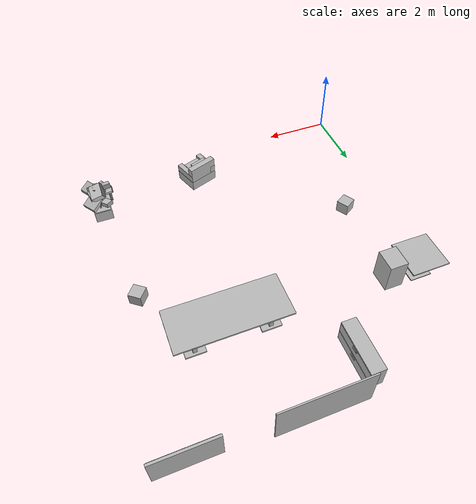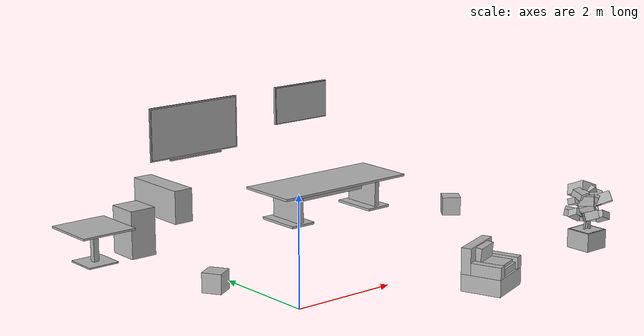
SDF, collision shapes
<sdf version="1.10">
 <model name="office_scene">
  <static>true</static>
  <link name="SchoolChair_01">
   <pose>1.55000 6.60000 0.00000 0.00000 0.00000 0.00000</pose>
   <visual name="SchoolChair_01_visual">
    <geometry><mesh><uri>model://office_scene/meshes/SchoolChair_01.glb</uri></mesh></geometry>
   </visual>
   <collision name="SchoolChair_01_c0">
    <pose>-0.60379 -0.08456 -0.24202 0.00000 -0.00000 -3.14159</pose>
    <geometry><box><size>0.5659 0.6753 1.0060</size></box></geometry>
   </collision>
  </link>
  <link name="break_table">
   <pose>0.60000 6.60000 0.00000 0.00000 0.00000 0.00000</pose>
   <visual name="break_table_visual">
    <geometry><mesh><uri>model://office_scene/meshes/break_table.glb</uri></mesh></geometry>
   </visual>
   <collision name="break_table_c0">
    <pose>-0.60379 -0.08456 -0.40333 0.00000 -0.00000 0.00000</pose>
    <geometry><box><size>0.1200 0.1200 0.6800</size></box></geometry>
   </collision>
   <collision name="break_table_c1">
    <pose>-0.60379 -0.08456 -0.72833 0.00000 -0.00000 0.00000</pose>
    <geometry><box><size>0.6800 0.6800 0.0300</size></box></geometry>
   </collision>
   <collision name="break_table_c2">
    <pose>-0.60379 -0.08456 -0.02333 0.00000 -0.00000 0.00000</pose>
    <geometry><box><size>1.2000 1.2000 0.0400</size></box></geometry>
   </collision>
  </link>
  <link name="conference_credenza">
   <pose>3.60000 8.60000 0.00000 0.00000 0.00000 0.00000</pose>
   <visual name="conference_credenza_visual">
    <geometry><mesh><uri>model://office_scene/meshes/conference_credenza.glb</uri></mesh></geometry>
   </visual>
   <collision name="conference_credenza_c0">
    <pose>-0.60379 -0.08456 -0.36833 0.00000 -0.00000 1.57080</pose>
    <geometry><box><size>1.6000 0.4500 0.7500</size></box></geometry>
   </collision>
   <collision name="conference_credenza_c1">
    <pose>-0.37379 -0.08456 -0.55583 0.00000 -0.00000 1.57080</pose>
    <geometry><box><size>1.5500 0.0200 0.3450</size></box></geometry>
   </collision>
   <collision name="conference_credenza_c2">
    <pose>-0.37379 -0.08456 -0.18083 0.00000 -0.00000 1.57080</pose>
    <geometry><box><size>1.5500 0.0200 0.3450</size></box></geometry>
   </collision>
   <collision name="conference_credenza_c3">
    <pose>-0.35379 -0.08456 -0.45083 0.00000 -0.00000 1.57080</pose>
    <geometry><box><size>0.2200 0.0250 0.0200</size></box></geometry>
   </collision>
   <collision name="conference_credenza_c4">
    <pose>-0.35379 -0.08456 -0.07583 0.00000 -0.00000 1.57080</pose>
    <geometry><box><size>0.2200 0.0250 0.0200</size></box></geometry>
   </collision>
  </link>
  <link name="conference_screen">
   <pose>8.60000 9.92000 1.70000 0.00000 0.00000 0.00000</pose>
   <visual name="conference_screen_visual">
    <geometry><mesh><uri>model://office_scene/meshes/conference_screen.glb</uri></mesh></geometry>
   </visual>
   <collision name="conference_screen_c0">
    <pose>-0.60379 -0.08456 -0.74333 0.00000 -0.00000 0.00000</pose>
    <geometry><box><size>1.6000 0.0600 0.9200</size></box></geometry>
   </collision>
   <collision name="conference_screen_c1">
    <pose>-0.60379 -0.11956 -0.74333 0.00000 -0.00000 0.00000</pose>
    <geometry><box><size>1.5600 0.0200 0.8800</size></box></geometry>
   </collision>
  </link>
  <link name="conference_table">
   <pose>6.50000 6.40000 0.00000 0.00000 0.00000 0.00000</pose>
   <visual name="conference_table_visual">
    <geometry><mesh><uri>model://office_scene/meshes/conference_table.glb</uri></mesh></geometry>
   </visual>
   <collision name="conference_table_c0">
    <pose>-0.60379 -0.08456 -0.29333 0.00000 -0.00000 0.00000</pose>
    <geometry><box><size>2.0000 0.1000 0.1000</size></box></geometry>
   </collision>
   <collision name="conference_table_c1">
    <pose>-1.70379 -0.08456 -0.71833 0.00000 -0.00000 0.00000</pose>
    <geometry><box><size>0.6000 1.0500 0.0500</size></box></geometry>
   </collision>
   <collision name="conference_table_c2">
    <pose>0.49621 -0.08456 -0.71833 0.00000 -0.00000 0.00000</pose>
    <geometry><box><size>0.6000 1.0500 0.0500</size></box></geometry>
   </collision>
   <collision name="conference_table_c3">
    <pose>-1.70379 -0.08456 -0.41333 0.00000 -0.00000 0.00000</pose>
    <geometry><box><size>0.1200 0.9000 0.6600</size></box></geometry>
   </collision>
   <collision name="conference_table_c4">
    <pose>0.49621 -0.08456 -0.41333 0.00000 -0.00000 0.00000</pose>
    <geometry><box><size>0.1200 0.9000 0.6600</size></box></geometry>
   </collision>
   <collision name="conference_table_c5">
    <pose>-0.60379 -0.08456 -0.01833 0.00000 -0.00000 0.00000</pose>
    <geometry><box><size>3.4000 1.4000 0.0500</size></box></geometry>
   </collision>
  </link>
  <link name="cube_marble_orange">
   <pose>1.40000 3.60000 0.20000 0.00000 0.00000 0.00000</pose>
   <visual name="cube_marble_orange_visual">
    <geometry><mesh><uri>model://office_scene/meshes/cube_marble_orange.glb</uri></mesh></geometry>
   </visual>
   <collision name="cube_marble_orange_c0">
    <pose>-0.60379 -0.08456 -0.74333 0.00000 -0.00000 0.54103</pose>
    <geometry><box><size>0.4000 0.4000 0.4000</size></box></geometry>
   </collision>
  </link>
  <link name="cube_stripe_purple">
   <pose>8.60000 4.60000 0.20000 0.00000 0.00000 0.00000</pose>
   <visual name="cube_stripe_purple_visual">
    <geometry><mesh><uri>model://office_scene/meshes/cube_stripe_purple.glb</uri></mesh></geometry>
   </visual>
   <collision name="cube_stripe_purple_c0">
    <pose>-0.60379 -0.08456 -0.74333 0.00000 -0.00000 0.90320</pose>
    <geometry><box><size>0.4000 0.4000 0.4000</size></box></geometry>
   </collision>
  </link>
  <link name="lounge_armchair_1">
   <pose>5.50000 0.35000 0.00000 0.00000 0.00000 0.00000</pose>
   <visual name="lounge_armchair_1_visual">
    <geometry><mesh><uri>model://office_scene/meshes/lounge_armchair_1.glb</uri></mesh></geometry>
   </visual>
   <collision name="lounge_armchair_1_c0">
    <pose>-0.97027 -0.21795 -0.28333 0.00000 -0.00000 0.34907</pose>
    <geometry><box><size>0.1700 0.8200 0.2400</size></box></geometry>
   </collision>
   <collision name="lounge_armchair_1_c1">
    <pose>-0.23731 0.04882 -0.28333 0.00000 -0.00000 0.34907</pose>
    <geometry><box><size>0.1700 0.8200 0.2400</size></box></geometry>
   </collision>
   <collision name="lounge_armchair_1_c2">
    <pose>-0.70982 0.20674 -0.14333 0.00000 -0.00000 0.34907</pose>
    <geometry><box><size>0.9500 0.2000 0.5200</size></box></geometry>
   </collision>
   <collision name="lounge_armchair_1_c3">
    <pose>-0.60379 -0.08456 -0.57333 0.00000 -0.00000 0.34907</pose>
    <geometry><box><size>0.9500 0.8200 0.3400</size></box></geometry>
   </collision>
   <collision name="lounge_armchair_1_c4">
    <pose>-0.66193 0.07518 -0.12333 0.10472 -0.00000 0.34907</pose>
    <geometry><box><size>0.5300 0.1400 0.4200</size></box></geometry>
   </collision>
   <collision name="lounge_armchair_1_c5">
    <pose>-0.59011 -0.12215 -0.33333 0.00000 -0.00000 0.34907</pose>
    <geometry><box><size>0.6500 0.6600 0.1400</size></box></geometry>
   </collision>
   <collision name="lounge_armchair_1_c6">
    <pose>-0.58327 -0.14094 -0.25333 0.00000 -0.00000 0.34907</pose>
    <geometry><box><size>0.5500 0.5200 0.1000</size></box></geometry>
   </collision>
  </link>
  <link name="lounge_plant">
   <pose>8.90000 0.90000 0.00000 0.00000 0.00000 0.00000</pose>
   <visual name="lounge_plant_visual">
    <geometry><mesh><uri>model://office_scene/meshes/lounge_plant.glb</uri></mesh></geometry>
   </visual>
   <collision name="lounge_plant_c0">
    <pose>-0.66958 -0.07297 0.29463 0.30857 0.22313 2.96717</pose>
    <geometry><box><size>0.3222 0.2760 0.1656</size></box></geometry>
   </collision>
   <collision name="lounge_plant_c1">
    <pose>-0.80059 0.18803 -0.00702 -0.02992 -0.16226 2.19610</pose>
    <geometry><box><size>0.2721 0.2331 0.1399</size></box></geometry>
   </collision>
   <collision name="lounge_plant_c2">
    <pose>-0.59319 -0.10270 0.37213 0.16247 0.31505 -1.04178</pose>
    <geometry><box><size>0.4366 0.3740 0.2244</size></box></geometry>
   </collision>
   <collision name="lounge_plant_c3">
    <pose>-0.88757 -0.11456 0.45162 -0.34816 0.01055 -3.03628</pose>
    <geometry><box><size>0.2780 0.2382 0.1429</size></box></geometry>
   </collision>
   <collision name="lounge_plant_c4">
    <pose>-0.41699 -0.27659 0.29659 -0.35020 -0.35844 -0.79919</pose>
    <geometry><box><size>0.4114 0.3525 0.2115</size></box></geometry>
   </collision>
   <collision name="lounge_plant_c5">
    <pose>-0.63421 -0.11281 -0.01782 0.03073 -0.01751 -2.39326</pose>
    <geometry><box><size>0.3921 0.3359 0.2015</size></box></geometry>
   </collision>
   <collision name="lounge_plant_c6">
    <pose>-0.55331 -0.38507 -0.02065 -0.45780 -0.40225 -1.40435</pose>
    <geometry><box><size>0.2906 0.2489 0.1494</size></box></geometry>
   </collision>
   <collision name="lounge_plant_c7">
    <pose>-0.61297 -0.08172 0.46073 -0.17439 0.47336 2.84111</pose>
    <geometry><box><size>0.2641 0.2263 0.1358</size></box></geometry>
   </collision>
   <collision name="lounge_plant_c8">
    <pose>-0.65785 -0.12711 0.10606 0.30736 0.00775 -2.47471</pose>
    <geometry><box><size>0.3561 0.3050 0.1830</size></box></geometry>
   </collision>
   <collision name="lounge_plant_c9">
    <pose>-0.60113 0.09592 0.45036 0.42278 0.39275 1.55607</pose>
    <geometry><box><size>0.4428 0.3794 0.2276</size></box></geometry>
   </collision>
   <collision name="lounge_plant_c10">
    <pose>-0.94168 -0.04759 0.29758 0.40920 -0.15599 3.03260</pose>
    <geometry><box><size>0.2514 0.2154 0.1292</size></box></geometry>
   </collision>
   <collision name="lounge_plant_c11">
    <pose>-0.78294 -0.31001 0.01562 0.21149 -0.30068 -2.24226</pose>
    <geometry><box><size>0.3313 0.2839 0.1703</size></box></geometry>
   </collision>
   <collision name="lounge_plant_c12">
    <pose>-0.48904 -0.18070 0.31228 0.44617 0.22182 -0.69736</pose>
    <geometry><box><size>0.2689 0.2304 0.1382</size></box></geometry>
   </collision>
   <collision name="lounge_plant_c13">
    <pose>-0.85341 -0.02573 -0.00450 0.49311 -0.47245 2.91012</pose>
    <geometry><box><size>0.2838 0.2432 0.1459</size></box></geometry>
   </collision>
   <collision name="lounge_plant_c14">
    <pose>-0.73890 -0.17128 0.32379 0.09587 -0.02564 -2.57100</pose>
    <geometry><box><size>0.3774 0.3234 0.1940</size></box></geometry>
   </collision>
   <collision name="lounge_plant_c15">
    <pose>-0.55410 -0.10516 0.26194 0.29936 0.22637 -0.39290</pose>
    <geometry><box><size>0.2554 0.2188 0.1313</size></box></geometry>
   </collision>
   <collision name="lounge_plant_c16">
    <pose>-0.39728 0.07104 0.02674 -0.30519 0.37391 0.64574</pose>
    <geometry><box><size>0.4549 0.3898 0.2339</size></box></geometry>
   </collision>
   <collision name="lounge_plant_c17">
    <pose>-0.53151 -0.07172 0.23484 -0.17401 0.04435 0.17589</pose>
    <geometry><box><size>0.4089 0.3503 0.2102</size></box></geometry>
   </collision>
   <collision name="lounge_plant_c18">
    <pose>-0.60379 -0.08456 -0.54783 0.00000 -0.00000 0.00000</pose>
    <geometry><box><size>0.5520 0.5520 0.3910</size></box></geometry>
   </collision>
   <collision name="lounge_plant_c19">
    <pose>-0.60379 -0.08456 -0.35733 0.00000 -0.00000 0.00000</pose>
    <geometry><box><size>0.4945 0.4945 0.0200</size></box></geometry>
   </collision>
   <collision name="lounge_plant_c20">
    <pose>-0.54642 -0.08066 -0.09933 0.10382 0.09300 0.06794</pose>
    <geometry><box><size>0.0368 0.0368 0.6325</size></box></geometry>
   </collision>
   <collision name="lounge_plant_c21">
    <pose>-0.59333 -0.02802 -0.09933 -0.09382 -0.03575 1.38788</pose>
    <geometry><box><size>0.0368 0.0368 0.6325</size></box></geometry>
   </collision>
   <collision name="lounge_plant_c22">
    <pose>-0.66034 -0.09497 -0.09933 -0.10803 -0.00260 -2.95960</pose>
    <geometry><box><size>0.0368 0.0368 0.6325</size></box></geometry>
   </collision>
   <collision name="lounge_plant_c23">
    <pose>-0.59585 -0.14151 -0.09933 0.17626 0.10444 -1.43219</pose>
    <geometry><box><size>0.0368 0.0368 0.6325</size></box></geometry>
   </collision>
  </link>
  <link name="whiteboard">
   <pose>5.40000 9.92000 1.50000 0.00000 0.00000 0.00000</pose>
   <visual name="whiteboard_visual">
    <geometry><mesh><uri>model://office_scene/meshes/whiteboard.glb</uri></mesh></geometry>
   </visual>
   <collision name="whiteboard_c0">
    <pose>-0.60379 -0.08456 -0.74333 0.00000 -0.00000 0.00000</pose>
    <geometry><box><size>2.4600 0.0400 1.2600</size></box></geometry>
   </collision>
   <collision name="whiteboard_c1">
    <pose>-0.60379 -0.10456 -0.74333 0.00000 -0.00000 0.00000</pose>
    <geometry><box><size>2.4000 0.0200 1.2000</size></box></geometry>
   </collision>
   <collision name="whiteboard_c2">
    <pose>-0.60379 -0.13456 -1.39333 0.00000 -0.00000 0.00000</pose>
    <geometry><box><size>1.4400 0.0700 0.0300</size></box></geometry>
   </collision>
  </link>
 </model>
</sdf>
